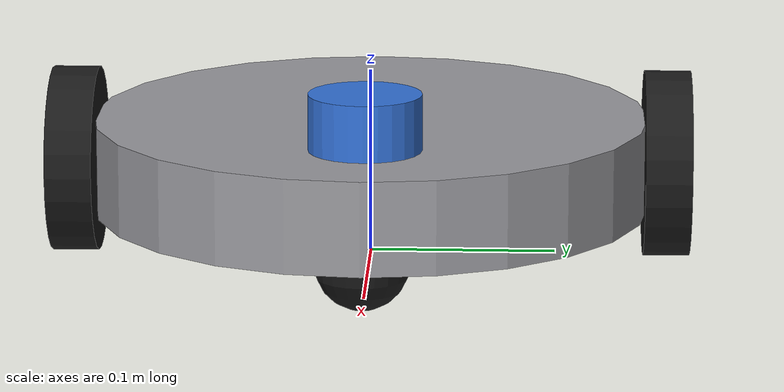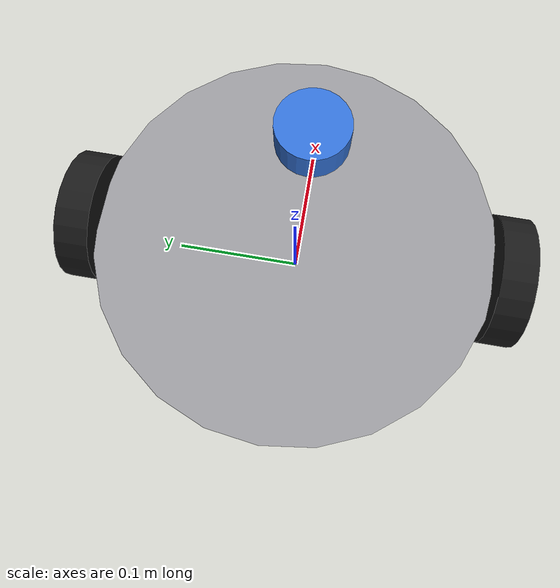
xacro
<?xml version="1.0"?>
<robot name="diffbot" xmlns:xacro="http://www.ros.org/wiki/xacro">

  <xacro:include filename="inertial.xacro"/>

  <!-- ===== parameters: change a number here and the whole robot follows ===== -->
  <xacro:property name="base_radius" value="0.15"/>
  <xacro:property name="base_length" value="0.05"/>
  <xacro:property name="base_mass" value="5.0"/>
  <xacro:property name="wheel_radius" value="0.05"/>
  <xacro:property name="wheel_width" value="0.025"/>
  <xacro:property name="wheel_mass" value="0.5"/>
  <xacro:property name="wheel_separation" value="0.32"/>
  <xacro:property name="caster_radius" value="0.025"/>
  <xacro:property name="caster_mass" value="0.1"/>
  <xacro:property name="caster_x" value="0.12"/>

  <material name="grey"><color rgba="0.6 0.6 0.62 1"/></material>
  <material name="black"><color rgba="0.1 0.1 0.1 1"/></material>
  <material name="blue"><color rgba="0.2 0.45 0.85 1"/></material>

  <!-- base_footprint: on the ground. base_link: at wheel-axle height. -->
  <link name="base_footprint"/>

  <joint name="base_joint" type="fixed">
    <parent link="base_footprint"/>
    <child link="base_link"/>
    <origin xyz="0 0 ${wheel_radius}" rpy="0 0 0"/>
  </joint>

  <link name="base_link">
    <visual>
      <origin xyz="0 0 0" rpy="0 0 0"/>
      <geometry><cylinder radius="${base_radius}" length="${base_length}"/></geometry>
      <material name="grey"/>
    </visual>
    <collision>
      <origin xyz="0 0 0" rpy="0 0 0"/>
      <geometry><cylinder radius="${base_radius}" length="${base_length}"/></geometry>
    </collision>
    <xacro:cylinder_inertial m="${base_mass}" r="${base_radius}" h="${base_length}">
      <origin xyz="0 0 0" rpy="0 0 0"/>
    </xacro:cylinder_inertial>
  </link>

  <!-- A passive caster: a sphere touching the ground, fixed to base_link. -->
  <xacro:macro name="caster" params="name x">
    <joint name="caster_${name}_joint" type="fixed">
      <parent link="base_link"/>
      <child link="caster_${name}_link"/>
      <origin xyz="${x} 0 ${caster_radius - wheel_radius}" rpy="0 0 0"/>
    </joint>
    <link name="caster_${name}_link">
      <visual>
        <geometry><sphere radius="${caster_radius}"/></geometry>
        <material name="black"/>
      </visual>
      <collision>
        <geometry><sphere radius="${caster_radius}"/></geometry>
      </collision>
      <xacro:sphere_inertial m="${caster_mass}" r="${caster_radius}">
        <origin xyz="0 0 0" rpy="0 0 0"/>
      </xacro:sphere_inertial>
    </link>
  </xacro:macro>

  <xacro:caster name="front" x="${caster_x}"/>
  <xacro:caster name="back" x="${-caster_x}"/>

  <!-- A driven wheel. The cylinder's axis must point along y, so the visual is rolled by pi/2;
       the JOINT frame keeps the base's orientation, and the wheel spins about its y axis. -->
  <xacro:macro name="wheel" params="side y_sign">
    <joint name="${side}_wheel_joint" type="continuous">
      <parent link="base_link"/>
      <child link="${side}_wheel_link"/>
      <origin xyz="0 ${y_sign * wheel_separation / 2} 0" rpy="0 0 0"/>
      <axis xyz="0 1 0"/>
    </joint>
    <link name="${side}_wheel_link">
      <visual>
        <origin xyz="0 0 0" rpy="${pi/2} 0 0"/>
        <geometry><cylinder radius="${wheel_radius}" length="${wheel_width}"/></geometry>
        <material name="black"/>
      </visual>
      <collision>
        <origin xyz="0 0 0" rpy="${pi/2} 0 0"/>
        <geometry><cylinder radius="${wheel_radius}" length="${wheel_width}"/></geometry>
      </collision>
      <xacro:cylinder_inertial m="${wheel_mass}" r="${wheel_radius}" h="${wheel_width}">
        <origin xyz="0 0 0" rpy="${pi/2} 0 0"/>
      </xacro:cylinder_inertial>
    </link>
  </xacro:macro>

  <xacro:wheel side="left" y_sign="1"/>
  <xacro:wheel side="right" y_sign="-1"/>

  <!-- A 2D laser scanner on top, slightly forward. -->
  <joint name="laser_joint" type="fixed">
    <parent link="base_link"/>
    <child link="laser_link"/>
    <origin xyz="0.08 0 ${base_length/2 + 0.015}" rpy="0 0 0"/>
  </joint>
  <link name="laser_link">
    <visual>
      <geometry><cylinder radius="0.03" length="0.03"/></geometry>
      <material name="blue"/>
    </visual>
    <collision>
      <geometry><cylinder radius="0.03" length="0.03"/></geometry>
    </collision>
    <xacro:cylinder_inertial m="0.1" r="0.03" h="0.03">
      <origin xyz="0 0 0" rpy="0 0 0"/>
    </xacro:cylinder_inertial>
  </link>

  <!-- Simulation: ros2_control hardware + the Gazebo plugin that runs the controller_manager (Chapter 4). -->
  <xacro:include filename="diffbot.ros2_control.xacro"/>

</robot>

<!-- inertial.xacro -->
<!-- Inertia of uniform solid bodies, centred on the body. Use the same origin as the visual. -->
<robot xmlns:xacro="http://www.ros.org/wiki/xacro">

  <xacro:macro name="box_inertial" params="m x y z *origin">
    <inertial>
      <xacro:insert_block name="origin"/>
      <mass value="${m}"/>
      <inertia ixx="${m * (y*y + z*z) / 12}" ixy="0" ixz="0"
               iyy="${m * (x*x + z*z) / 12}" iyz="0"
               izz="${m * (x*x + y*y) / 12}"/>
    </inertial>
  </xacro:macro>

  <!-- A cylinder whose axis is the z axis of the given origin. -->
  <xacro:macro name="cylinder_inertial" params="m r h *origin">
    <inertial>
      <xacro:insert_block name="origin"/>
      <mass value="${m}"/>
      <inertia ixx="${m * (3*r*r + h*h) / 12}" ixy="0" ixz="0"
               iyy="${m * (3*r*r + h*h) / 12}" iyz="0"
               izz="${m * r*r / 2}"/>
    </inertial>
  </xacro:macro>

  <xacro:macro name="sphere_inertial" params="m r *origin">
    <inertial>
      <xacro:insert_block name="origin"/>
      <mass value="${m}"/>
      <inertia ixx="${2 * m * r*r / 5}" ixy="0" ixz="0" iyy="${2 * m * r*r / 5}" iyz="0" izz="${2 * m * r*r / 5}"/>
    </inertial>
  </xacro:macro>

</robot>
